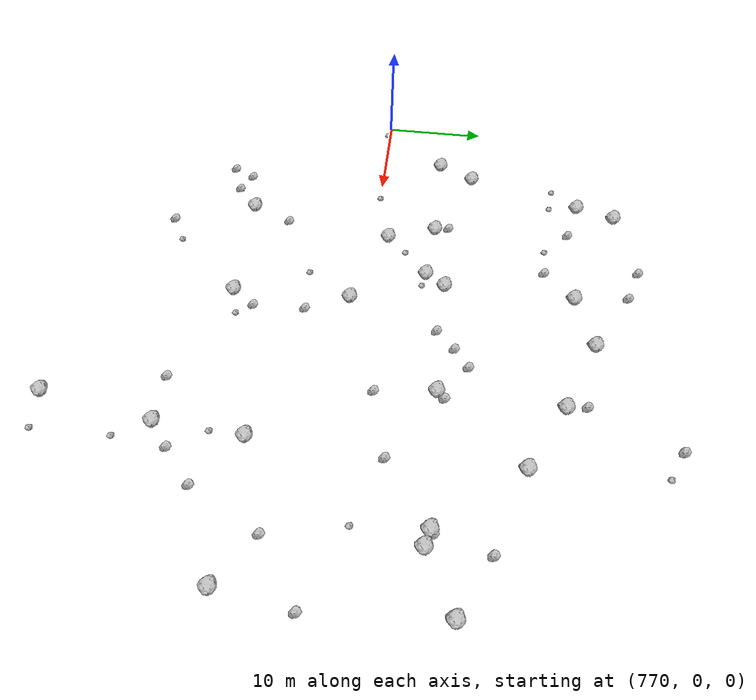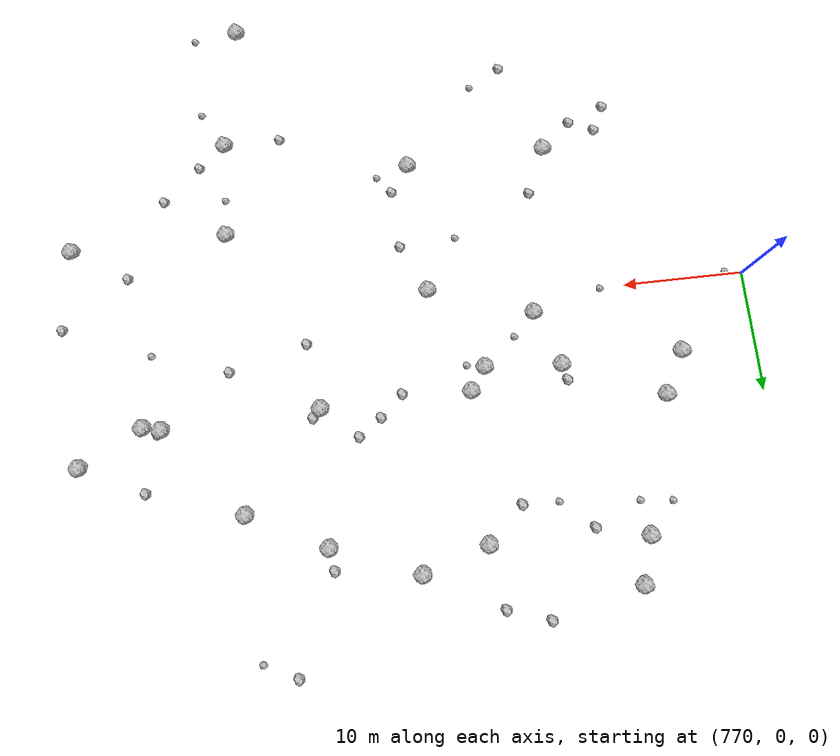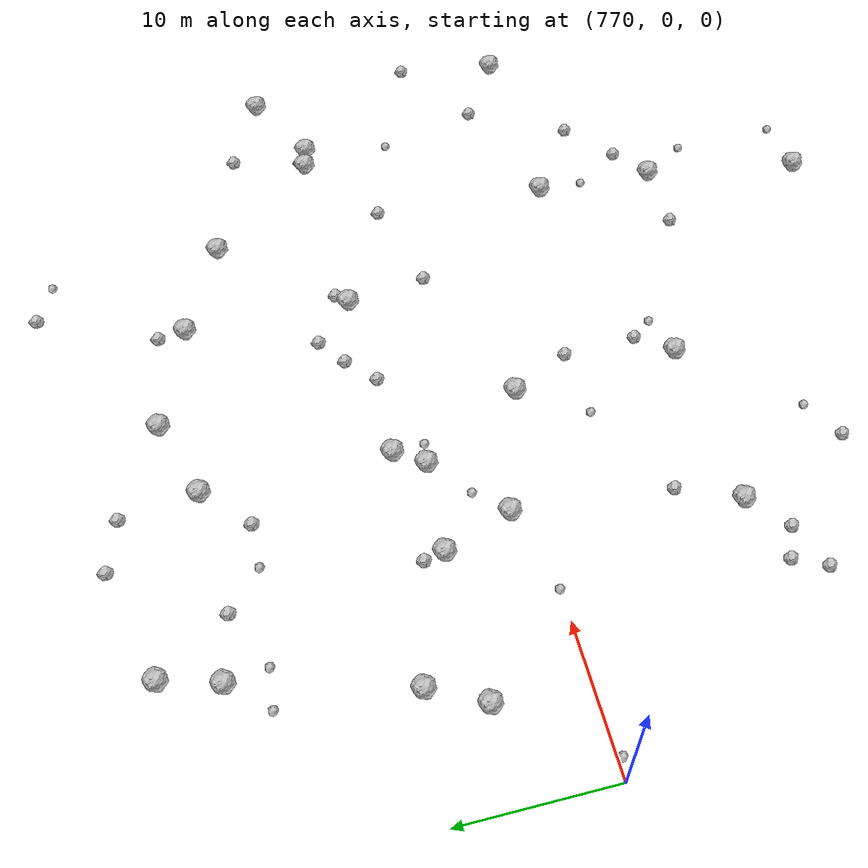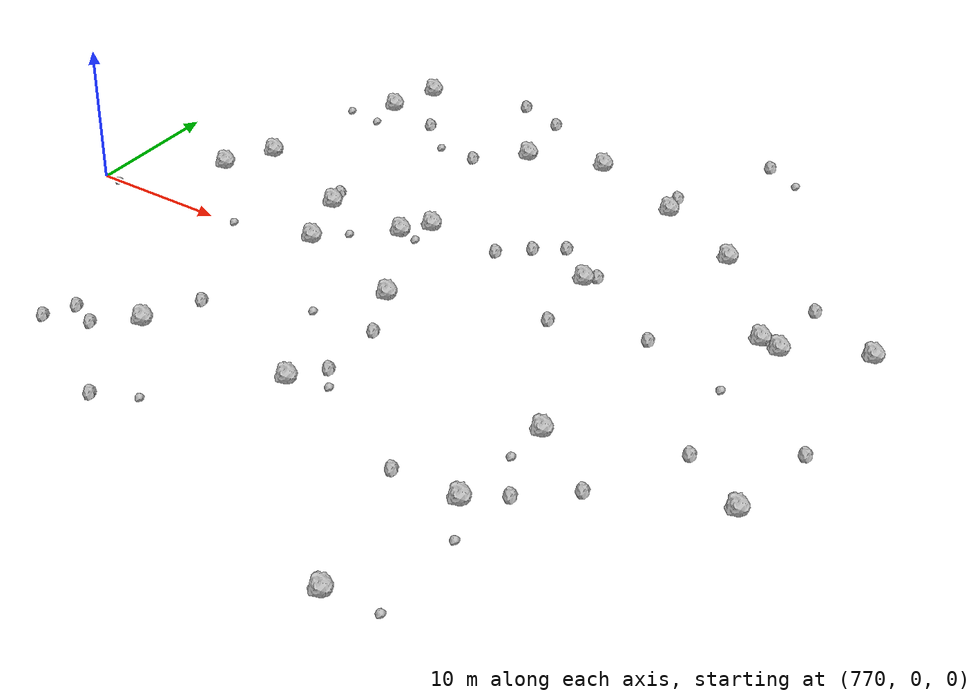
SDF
<sdf version="1.6">
 <world name="default">
  <include><uri>model://sun</uri></include>
  <model name="rock1_20_4">
   <include><uri>model://rock1</uri><pose>812.8230724304882 -7.9911882554077955 0.5 0 0 0</pose></include>
  </model>
  <model name="rock1_20_5">
   <include><uri>model://rock1</uri><pose>785.1687916260479 -12.787009356015638 0.5 0 0 0</pose></include>
  </model>
  <model name="rock1_20_6">
   <include><uri>model://rock1</uri><pose>820.7165681495727 7.584740355108266 0.5 0 0 0</pose></include>
  </model>
  <model name="rock1_20_7">
   <include><uri>model://rock1</uri><pose>825.9730116350496 10.26096549295395 0.5 0 0 0</pose></include>
  </model>
  <model name="rock1_20_8">
   <include><uri>model://rock1</uri><pose>806.5580859593199 18.670207604356705 0.5 0 0 0</pose></include>
  </model>
  <model name="rock1_20_9">
   <include><uri>model://rock1</uri><pose>793.8591403921208 7.471776567370398 0.5 0 0 0</pose></include>
  </model>
  <model name="rock1_20_10">
   <include><uri>model://rock1</uri><pose>796.8955266567433 -12.479443963920485 0.5 0 0 0</pose></include>
  </model>
  <model name="rock1_20_11">
   <include><uri>model://rock1</uri><pose>812.9519050988381 15.4041748193128 0.5 0 0 0</pose></include>
  </model>
  <model name="rock1_20_12">
   <include><uri>model://rock1</uri><pose>825.862085572133 -7.901159643039318 0.5 0 0 0</pose></include>
  </model>
  <model name="rock1_20_13">
   <include><uri>model://rock1</uri><pose>806.2392174047772 7.573982302380919 0.5 0 0 0</pose></include>
  </model>
  <model name="rock1_20_14">
   <include><uri>model://rock1</uri><pose>799.4436837592316 21.492775388954293 0.5 0 0 0</pose></include>
  </model>
  <model name="rock1_20_15">
   <include><uri>model://rock1</uri><pose>810.5900784267792 -26.547165215976875 0.5 0 0 0</pose></include>
  </model>
  <model name="rock1_20_16">
   <include><uri>model://rock1</uri><pose>776.2523111678008 6.007333270192959 0.5 0 0 0</pose></include>
  </model>
  <model name="rock1_20_17">
   <include><uri>model://rock1</uri><pose>812.3815249036262 -16.04052919409167 0.5 0 0 0</pose></include>
  </model>
  <model name="rock1_20_18">
   <include><uri>model://rock1</uri><pose>778.0695016498382 9.445581902378052 0.5 0 0 0</pose></include>
  </model>
  <model name="rock1_20_19">
   <include><uri>model://rock1</uri><pose>792.5252729742962 5.590786529416242 0.5 0 0 0</pose></include>
  </model>
  <model name="rock1_20_20">
   <include><uri>model://rock1</uri><pose>782.3080708933882 24.145620154735177 0.5 0 0 0</pose></include>
  </model>
  <model name="rock1_20_21">
   <include><uri>model://rock1</uri><pose>819.2279776223246 7.937128535502268 0.5 0 0 0</pose></include>
  </model>
  <model name="rock1_20_22">
   <include><uri>model://rock1</uri><pose>793.981269530761 19.780585289273105 0.5 0 0 0</pose></include>
  </model>
  <model name="rock1_20_23">
   <include><uri>model://rock1</uri><pose>796.4439218572339 -1.3472213072906314 0.5 0 0 0</pose></include>
  </model>
  <model name="rock1_20_24">
   <include><uri>model://rock1</uri><pose>787.9185915159238 1.4602097254092996 0.5 0 0 0</pose></include>
  </model>
  <model name="rock1_20_25">
   <include><uri>model://rock1</uri><pose>781.2011401046276 20.432475878763597 0.5 0 0 0</pose></include>
  </model>
  <model name="rock1_20_26">
   <include><uri>model://rock1</uri><pose>786.2197179340404 6.062836873406553 0.5 0 0 0</pose></include>
  </model>
  <model name="rock2_20_0">
   <include><uri>model://rock2</uri><pose>798.3168085908462 -5.331949984831251 0.3 0 0 0</pose></include>
  </model>
  <model name="rock2_20_1">
   <include><uri>model://rock2</uri><pose>785.8737244279043 7.434676780517634 0.3 0 0 0</pose></include>
  </model>
  <model name="rock2_20_2">
   <include><uri>model://rock2</uri><pose>801.3832728726512 8.87167595803097 0.3 0 0 0</pose></include>
  </model>
  <model name="rock2_20_3">
   <include><uri>model://rock2</uri><pose>789.8066725648076 26.075179423561863 0.3 0 0 0</pose></include>
  </model>
  <model name="rock2_20_4">
   <include><uri>model://rock2</uri><pose>817.8342420697614 -11.462239069450852 0.3 0 0 0</pose></include>
  </model>
  <model name="rock2_20_5">
   <include><uri>model://rock2</uri><pose>786.8703232548203 -8.862826849802538 0.3 0 0 0</pose></include>
  </model>
  <model name="rock2_20_6">
   <include><uri>model://rock2</uri><pose>803.3050661501927 10.229060528381027 0.3 0 0 0</pose></include>
  </model>
  <model name="rock2_20_7">
   <include><uri>model://rock2</uri><pose>793.2406272108622 24.91277103188886 0.3 0 0 0</pose></include>
  </model>
  <model name="rock2_20_8">
   <include><uri>model://rock2</uri><pose>806.8728485170545 2.1447543575214354 0.3 0 0 0</pose></include>
  </model>
  <model name="rock2_20_9">
   <include><uri>model://rock2</uri><pose>785.3803664365554 19.42098495990352 0.3 0 0 0</pose></include>
  </model>
  <model name="rock2_20_10">
   <include><uri>model://rock2</uri><pose>790.9204756416152 17.011609005804083 0.3 0 0 0</pose></include>
  </model>
  <model name="rock2_20_11">
   <include><uri>model://rock2</uri><pose>780.5195548298791 -13.99832631114463 0.3 0 0 0</pose></include>
  </model>
  <model name="rock2_20_12">
   <include><uri>model://rock2</uri><pose>813.3875376054312 3.8053466425622418 0.3 0 0 0</pose></include>
  </model>
  <model name="rock2_20_13">
   <include><uri>model://rock2</uri><pose>820.7264392143063 12.884881267007337 0.3 0 0 0</pose></include>
  </model>
  <model name="rock2_20_14">
   <include><uri>model://rock2</uri><pose>826.8733432377965 -1.2012083282526618 0.3 0 0 0</pose></include>
  </model>
  <model name="rock2_20_15">
   <include><uri>model://rock2</uri><pose>821.2532615830817 -5.022443547381318 0.3 0 0 0</pose></include>
  </model>
  <model name="rock2_20_16">
   <include><uri>model://rock2</uri><pose>807.6263656952326 -16.057621580066233 0.3 0 0 0</pose></include>
  </model>
  <model name="rock2_20_17">
   <include><uri>model://rock2</uri><pose>782.5743424227194 -14.899429954537124 0.3 0 0 0</pose></include>
  </model>
  <model name="rock2_20_18">
   <include><uri>model://rock2</uri><pose>799.4810942275171 7.132193225999295 0.3 0 0 0</pose></include>
  </model>
  <model name="rock2_20_19">
   <include><uri>model://rock2</uri><pose>819.5392260399614 8.226664551381617 0.3 0 0 0</pose></include>
  </model>
  <model name="rock2_20_20">
   <include><uri>model://rock2</uri><pose>806.8983628224889 8.319162624493039 0.3 0 0 0</pose></include>
  </model>
  <model name="rock2_20_21">
   <include><uri>model://rock2</uri><pose>806.2645642860241 20.519214864745678 0.3 0 0 0</pose></include>
  </model>
  <model name="rock2_20_22">
   <include><uri>model://rock2</uri><pose>798.5055202038494 -10.24349285806882 0.3 0 0 0</pose></include>
  </model>
  <model name="rock2_20_23">
   <include><uri>model://rock2</uri><pose>809.7332668472242 28.22125939100708 0.3 0 0 0</pose></include>
  </model>
  <model name="rock2_20_24">
   <include><uri>model://rock2</uri><pose>787.9838581868139 -20.592799922087174 0.3 0 0 0</pose></include>
  </model>
  <model name="rock2_20_25">
   <include><uri>model://rock2</uri><pose>814.6621458876181 -14.192442283173328 0.3 0 0 0</pose></include>
  </model>
  <model name="rock2_20_26">
   <include><uri>model://rock2</uri><pose>779.4884216834572 -16.06519866228279 0.3 0 0 0</pose></include>
  </model>
  <model name="rock3_20_0">
   <include><uri>model://rock3</uri><pose>790.696839690667 -19.155400696556825 0.2 0 0 0</pose></include>
  </model>
  <model name="rock3_20_1">
   <include><uri>model://rock3</uri><pose>814.2472594983764 -26.1763399694653 0.2 0 0 0</pose></include>
  </model>
  <model name="rock3_20_2">
   <include><uri>model://rock3</uri><pose>799.5895585614743 -11.71326009962305 0.2 0 0 0</pose></include>
  </model>
  <model name="rock3_20_3">
   <include><uri>model://rock3</uri><pose>789.7262241801333 3.3521258240118 0.2 0 0 0</pose></include>
  </model>
  <model name="rock3_20_4">
   <include><uri>model://rock3</uri><pose>781.4864165660329 17.669424208128504 0.2 0 0 0</pose></include>
  </model>
  <model name="rock3_20_5">
   <include><uri>model://rock3</uri><pose>812.368353670682 26.868251615388537 0.2 0 0 0</pose></include>
  </model>
  <model name="rock3_20_6">
   <include><uri>model://rock3</uri><pose>814.1252657560589 -19.10840934702393 0.2 0 0 0</pose></include>
  </model>
  <model name="rock3_20_7">
   <include><uri>model://rock3</uri><pose>793.5817552757682 -5.6541923045509925 0.2 0 0 0</pose></include>
  </model>
  <model name="rock3_20_8">
   <include><uri>model://rock3</uri><pose>787.9289417515049 17.07088187961758 0.2 0 0 0</pose></include>
  </model>
  <model name="rock3_20_9">
   <include><uri>model://rock3</uri><pose>778.8765732601569 17.968948105578754 0.2 0 0 0</pose></include>
  </model>
  <model name="rock3_20_10">
   <include><uri>model://rock3</uri><pose>819.6397094670584 1.723941773090317 0.2 0 0 0</pose></include>
  </model>
  <model name="rock3_20_11">
   <include><uri>model://rock3</uri><pose>782.0644725694914 0.03443049970287504 0.2 0 0 0</pose></include>
  </model>
  <model name="rock3_20_12">
   <include><uri>model://rock3</uri><pose>771.4251589485209 -0.2712552873558458 0.2 0 0 0</pose></include>
  </model>
  <model name="rock3_20_13">
   <include><uri>model://rock3</uri><pose>812.618652392106 -11.090447299117749 0.2 0 0 0</pose></include>
  </model>
  <model name="rock3_20_14">
   <include><uri>model://rock3</uri><pose>793.9230149190215 5.324203810950593 0.2 0 0 0</pose></include>
  </model>
 </world>
</sdf>
